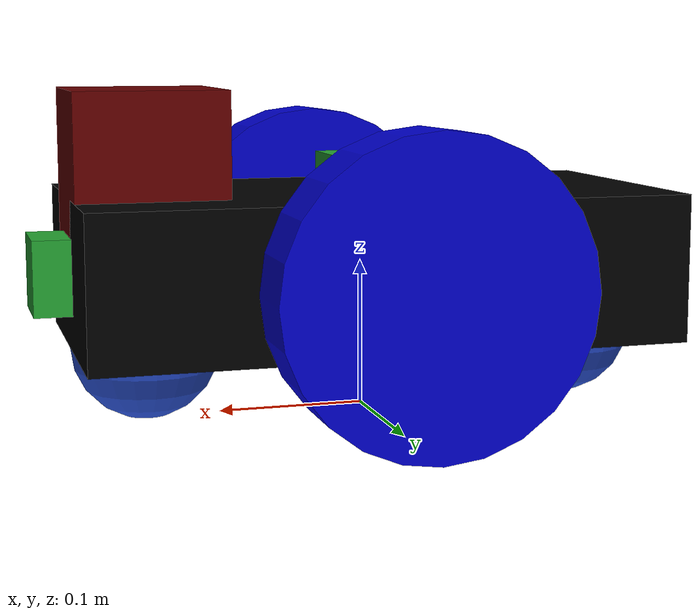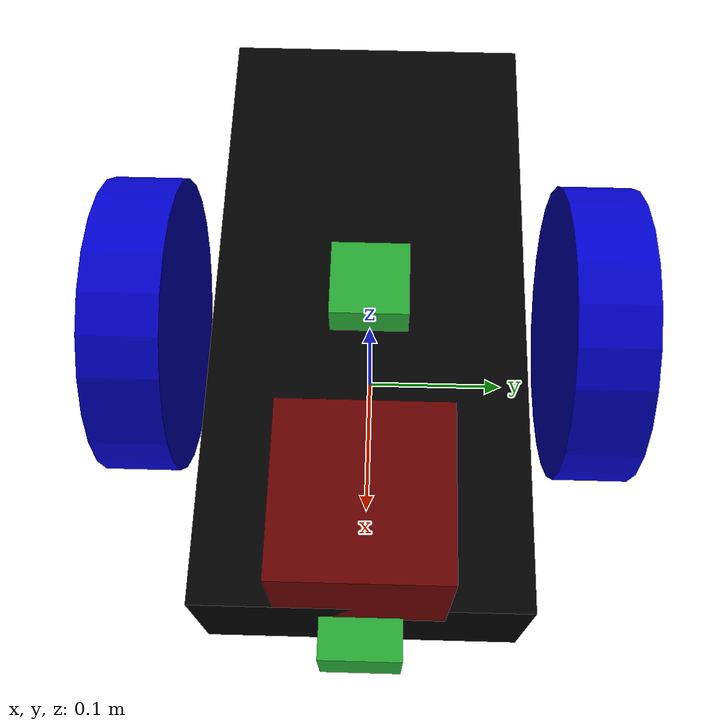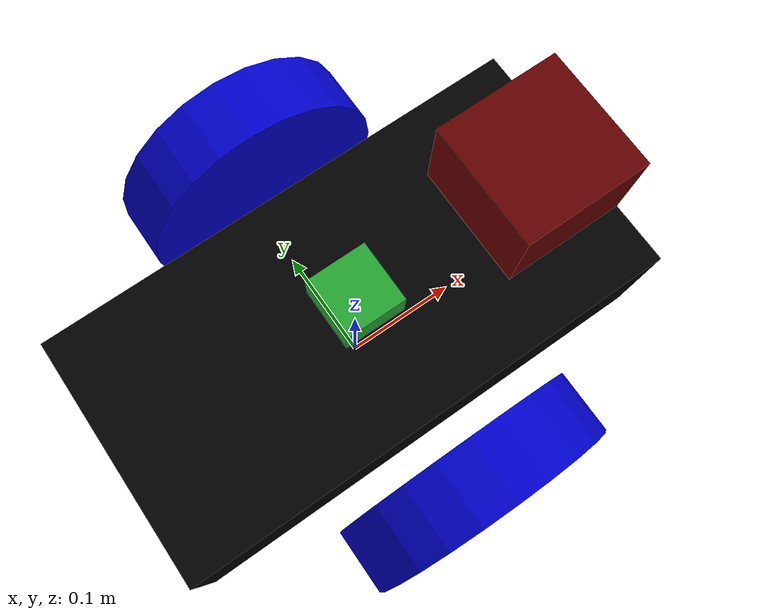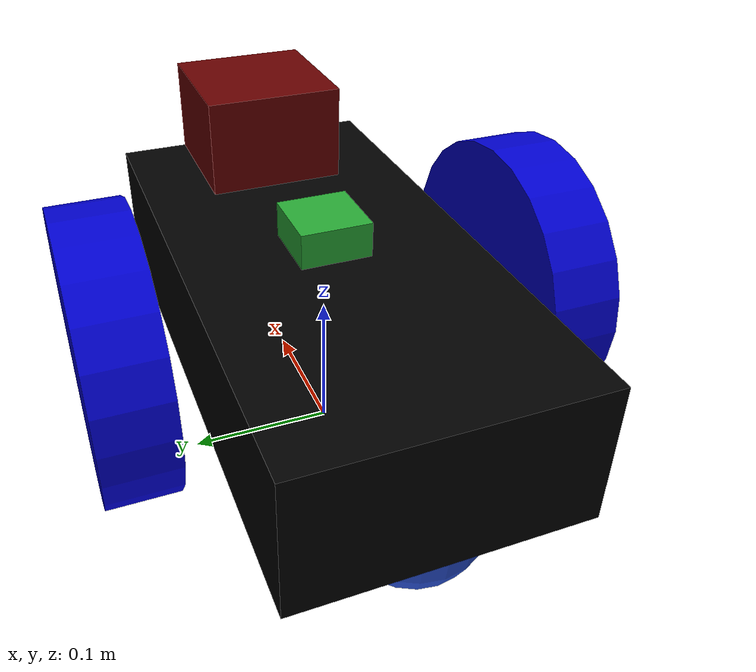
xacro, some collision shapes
<?xml version='1.0'?>

<robot name="my_robot" xmlns:xacro="http://www.ros.org/wiki/xacro">
  <xacro:include filename="$(find chaser_robot)/urdf/chaser_robot.gazebo" />
  <xacro:include filename="$(find chaser_robot)/urdf/materials.xacro" />

  <link name="robot_footprint"></link>

  <joint name="robot_footprint_joint" type="fixed">
    <origin xyz="0 0 0.1" rpy="0 0 0" />
    <parent link="robot_footprint"/>
    <child link="chassis" />
  </joint>

  <link name='chassis'>
    <pose>0 0 0.1 0 0 0</pose>

    <inertial>
      <mass value="15.0"/>
      <origin xyz="0.0 0 0" rpy=" 0 0 0"/>
      <inertia
          ixx="0.1" ixy="0" ixz="0"
          iyy="0.1" iyz="0"
          izz="0.1"
      />
    </inertial>

    <collision name='collision'>
      <origin xyz="0 0 0" rpy=" 0 0 0"/>
      <geometry>
        <box size=".4 .2 .1"/>
      </geometry>
    </collision>

    <visual name='chassis_visual'>
      <origin xyz="0 0 0" rpy=" 0 0 0"/>
      <geometry>
        <box size=".4 .2 .1"/>
      </geometry>
      <material name="black"/>
    </visual>
    <collision name='front_caster_collision'>
      <origin xyz="0.15 0 -0.05" rpy=" 0 0 0"/>
      <geometry>
        <sphere radius="0.0499"/>
      </geometry>
    </collision>

    <visual name='front_caster_visual'>
      <origin xyz="0.15 0 -0.05" rpy=" 0 0 0"/>
      <geometry>
        <sphere radius="0.05"/>
      </geometry>
    </visual>
     <collision name='back_caster_collision'>
      <origin xyz="-0.15 0 -0.05" rpy=" 0 0 0"/>
      <geometry>
        <sphere radius="0.0499"/>
      </geometry>
    </collision>

    <visual name='back_caster_visual'>
      <origin xyz="-0.15 0 -0.05" rpy=" 0 0 0"/>
      <geometry>
        <sphere radius="0.05"/>
      </geometry>
    </visual>

    <inertial>
      <origin xyz="0.0 0.0 0.0" rpy="0.0 1.5707 1.5707"/>
      <mass value="5.0"/>
      <inertia ixx="0.1" ixy="0.0" ixz="0.0" iyy="0.1" iyz="0.0" izz="0.1"/>
    </inertial>

  </link>
  <link name="left_wheel">
    <collision name='left_wheel_collision'>
      <origin xyz="0 0 0" rpy=" 0 1.5705 1.5705"/>
      <geometry>
        <cylinder radius="0.1" length="0.05"/>
      </geometry>
    </collision>

    <visual name='left_wheel_visual'>
      <origin xyz="0 0 0" rpy=" 0 1.5705 1.5705"/>
      <geometry>
        <cylinder radius="0.1" length="0.05"/>
      </geometry>
      <material name="blue"/>
    </visual>

    <inertial>
      <origin xyz="0.0 0.0 0.0" rpy="0.0 1.5707 1.5707"/>
      <mass value="5.0"/>
      <inertia ixx="0.1" ixy="0.0" ixz="0.0" iyy="0.1" iyz="0.0" izz="0.1"/>
    </inertial>
  </link>

  <link name="right_wheel">

    <collision name='right_wheel_collision'>
      <origin xyz="0 0 0" rpy=" 0 1.5705 1.5705"/>
      <geometry>
        <cylinder radius="0.1" length="0.05"/>
      </geometry>
    </collision>

    <visual name='right_wheel_visual'>
      <origin xyz="0 0 0" rpy=" 0 1.5705 1.5705"/>
      <geometry>
        <cylinder radius="0.1" length="0.05"/>
      </geometry>
      <material name="blue"/>
    </visual>

    <inertial>
      <origin xyz="0.0 0.0 0.0" rpy="0.0 1.5707 1.5707"/>
      <mass value="5.0"/>
      <inertia ixx="0.1" ixy="0.0" ixz="0.0" iyy="0.1" iyz="0.0" izz="0.1"/>
    </inertial>
  </link>

  <joint type="continuous" name="left_wheel_hinge">
    <origin xyz="0 0.15 0" rpy="0 0 0"/>
    <child link="left_wheel"/>
    <parent link="chassis"/>
    <axis xyz="0 1 0" rpy="0 0 0"/>
    <limit effort="10000" velocity="1000"/>
    <dynamics damping="1.0" friction="1.0"/>
  </joint>

  <joint type="continuous" name="right_wheel_hinge">
    <origin xyz="0 -0.15 0" rpy="0 0 0"/>
    <child link="right_wheel"/>
    <parent link="chassis"/>
    <axis xyz="0 1 0" rpy="0 0 0"/>
    <limit effort="10000" velocity="1000"/>
    <dynamics damping="1.0" friction="1.0"/>
  </joint>

  <link name="camera">
      <inertial>
        <origin xyz="0.0 0.0 0.0" rpy="0.0 0.0 0.0"/>
        <mass value="0.1"/>
        <inertia ixx="1e-6" ixy="0.0" ixz="0.0" iyy="1e-6" iyz="0.0" izz="1e-6"/>
      </inertial>
      <visual name="">
        <origin xyz="0.0 0.0 0.0" rpy="0.0 0.0 0.0"/>
        <geometry>
          <box size="0.05 0.05 0.05"/>
        </geometry>

      </visual>
      <collision>
        <origin xyz="0.0 0.0 0.0" rpy="0.0 0.0 0.0"/>
        <geometry>
          <box size="0.05 0.05 0.05"/>
        </geometry>
      </collision>
      <gazebo reference="camera">
          <material>Gazebo/Green</material>
      </gazebo>
  </link>

  <joint name="camera_joint" type="fixed">
    <origin xyz="0.2 0.0 0.0" rpy="0.0 0.0 0.0"/>
    <parent link="chassis"/>
    <child link="camera"/>
    <axis xyz="0.0 1 0.0"/>
  </joint>

  <link name="hokuyo">
      <inertial>
        <origin xyz="0.0 0.0 0.0" rpy="0.0 0.0 0.0"/>
        <mass value="0.1"/>
        <inertia ixx="1e-6" ixy="0.0" ixz="0.0" iyy="1e-6" iyz="0.0" izz="1e-6"/>
      </inertial>
      <visual name="hokuyo_visual">
        <origin xyz="0.0 0.0 0.0" rpy="0.0 0.0 0.0"/>
        <geometry>
          <mesh filename="package://chaser_robot/meshes/hokuyo.dae"/>
        </geometry>
        <material name="blue">
          <color rgba="100.0 0.0 0.0 1.0"/>
        </material>
      </visual>
      <collision>
        <origin xyz="0.0 0.0 0.0" rpy="0.0 0.0 0.0"/>
        <geometry>
          <box size="0.1 0.1 0.1"/>
        </geometry>
      </collision>
    </link>

  <joint name="hokuyo_joint" type="fixed">
    <origin xyz="0.15 0.0 0.07" rpy="0.0 0.0 0.0"/>
    <parent link="chassis"/>
    <child link="hokuyo"/>
    <axis xyz="0.0 1 0.0"/>
  </joint>

  <link name="imu_sensor">
      <inertial>
        <origin xyz="0.0 0.0 0.0" rpy="0.0 0.0 0.0"/>
        <mass value="0.1"/>
        <inertia ixx="1e-6" ixy="0.0" ixz="0.0" iyy="1e-6" iyz="0.0" izz="1e-6"/>
      </inertial>
      <visual name="imu_sensor_visual">
        <origin xyz="0.0 0.0 0.0" rpy="0.0 0.0 0.0"/>
        <geometry>
          <box size="0.05 0.05 0.05"/>
        </geometry>

      </visual>
      <collision>
        <origin xyz="0.0 0.0 0.0" rpy="0.0 0.0 0.0"/>
        <geometry>
          <box size="0.05 0.05 0.05"/>
        </geometry>
      </collision>
      <gazebo reference="imu_sensor">
          <material>Gazebo/Green</material>
      </gazebo>
  </link>

  <joint name="imu_sensor_joint" type="fixed">
    <origin xyz="0.0 0.0 0.05" rpy="0.0 0.0 0.0"/>
    <parent link="chassis"/>
    <child link="imu_sensor"/>
    <axis xyz="0.0 1 0.0"/>
  </joint>

</robot>

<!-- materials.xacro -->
<robot >

  <material name="black">
    <color rgba="0.0 0.0 0.0 1.0"/>
  </material>

  <material name="blue">
    <color rgba="0.0 0.0 0.8 1.0"/>
  </material>

  <material name="green">
    <color rgba="0.0 0.8 0.0 1.0"/>
  </material>

  <material name="grey">
    <color rgba="0.2 0.2 0.2 1.0"/>
  </material>

  <material name="orange">
    <color rgba="${255/255} ${108/255} ${10/255} 1.0"/>
  </material>

  <material name="brown">
    <color rgba="${222/255} ${207/255} ${195/255} 1.0"/>
  </material>

  <material name="red">
    <color rgba="0.8 0.0 0.0 1.0"/>
  </material>

  <material name="white">
    <color rgba="1.0 1.0 1.0 1.0"/>
  </material>

  <material name="yellow">
    <color rgba="1.0 1.0 0 1.0"/>
  </material>

</robot>
